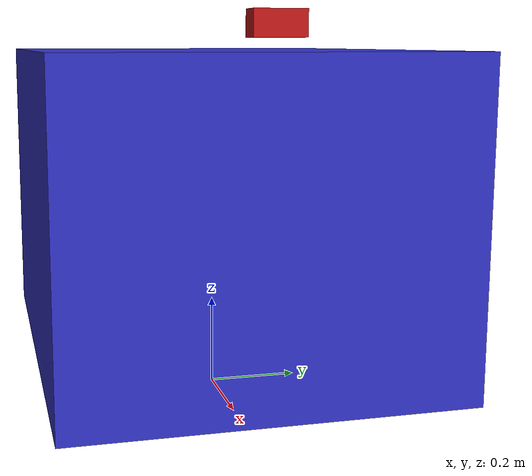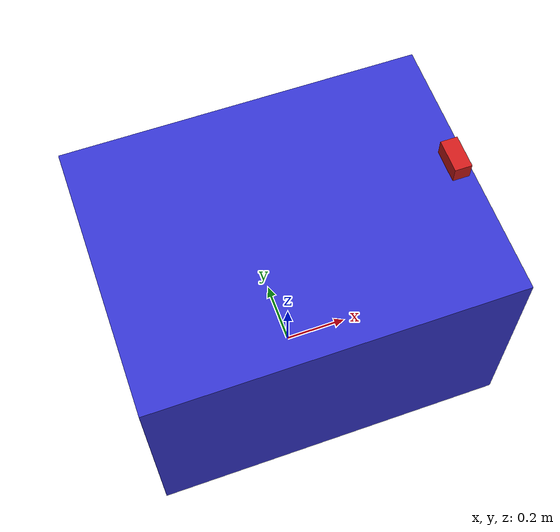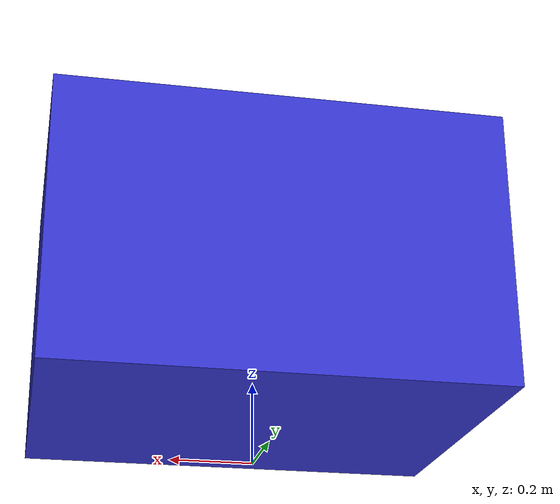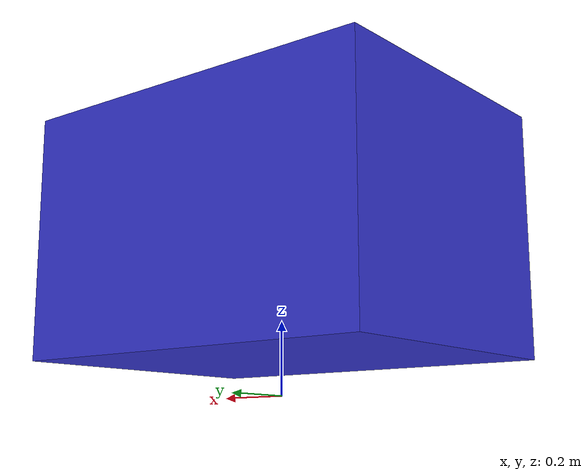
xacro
<?xml version="1.0"?>
<robot name="inspection_robot" xmlns:xacro="http://www.ros.org/wiki/xacro">

  <!-- Base properties -->
  <xacro:property name="robot_length" value="1.070"/>
  <xacro:property name="robot_width" value="0.820"/>
  <xacro:property name="robot_height" value="0.680"/>
  <xacro:property name="track_wheel_radius" value="0.095"/>
  <xacro:property name="track_width" value="0.176"/>
  <xacro:property name="chassis_mass" value="50.0"/>

  <!-- Base link -->
  <link name="base_link">
    <visual>
      <origin xyz="0 0 ${robot_height/2}" rpy="0 0 0"/>
      <geometry>
        <box size="${robot_length} ${robot_width} ${robot_height}"/>
      </geometry>
      <material name="blue">
        <color rgba="0.2 0.2 0.8 1.0"/>
      </material>
    </visual>
    <collision>
      <origin xyz="0 0 ${robot_height/2}" rpy="0 0 0"/>
      <geometry>
        <box size="${robot_length} ${robot_width} ${robot_height}"/>
      </geometry>
    </collision>
    <inertial>
      <mass value="${chassis_mass}"/>
      <inertia ixx="${chassis_mass*(robot_width*robot_width+robot_height*robot_height)/12}"
               ixy="0"
               ixz="0"
               iyy="${chassis_mass*(robot_length*robot_length+robot_height*robot_height)/12}"
               iyz="0"
               izz="${chassis_mass*(robot_length*robot_length+robot_width*robot_width)/12}"/>
    </inertial>
  </link>

  <!-- Robot footprint for navigation -->
  <link name="base_footprint"/>
  <joint name="base_footprint_joint" type="fixed">
    <parent link="base_footprint"/>
    <child link="base_link"/>
    <origin xyz="0 0 ${track_wheel_radius}" rpy="0 0 0"/>
  </joint>

  <!-- Camera link -->
  <link name="camera_link">
    <visual>
      <origin xyz="0 0 0" rpy="0 0 0"/>
      <geometry>
        <box size="0.05 0.1 0.05"/>
      </geometry>
      <material name="red">
        <color rgba="0.8 0.1 0.1 1.0"/>
      </material>
    </visual>
    <collision>
      <origin xyz="0 0 0" rpy="0 0 0"/>
      <geometry>
        <box size="0.05 0.1 0.05"/>
      </geometry>
    </collision>
    <inertial>
      <mass value="0.1"/>
      <inertia ixx="0.00001" ixy="0" ixz="0" iyy="0.00001" iyz="0" izz="0.00001"/>
    </inertial>
  </link>

  <joint name="camera_joint" type="fixed">
    <parent link="base_link"/>
    <child link="camera_link"/>
    <origin xyz="${robot_length/2 - 0.05} 0 ${robot_height + 0.05}" rpy="0 0 0"/>
  </joint>

</robot>
